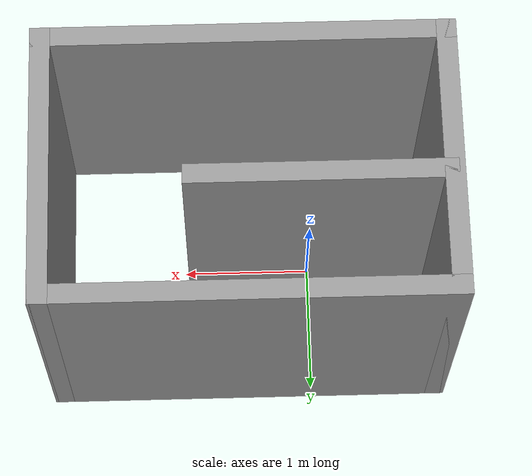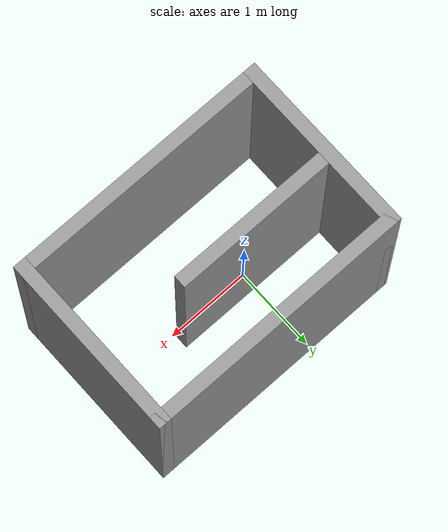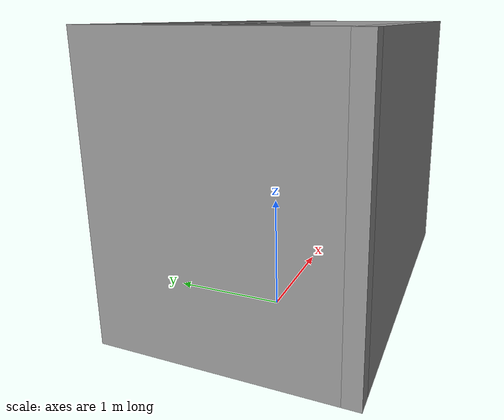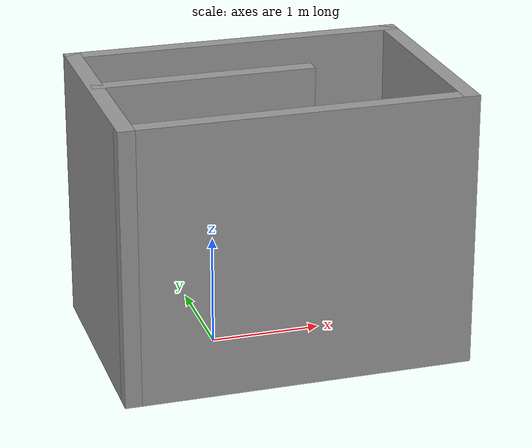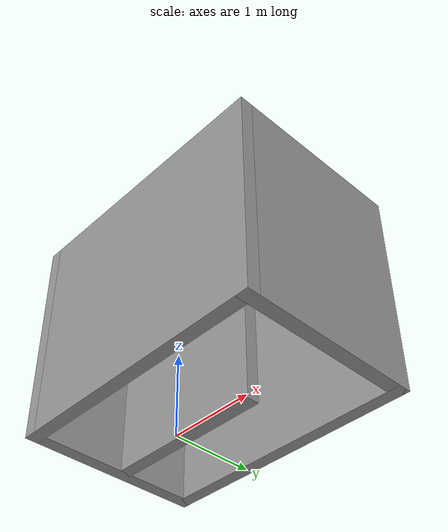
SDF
<?xml version='1.0'?>
<sdf version='1.7'>
  <model name='course1'>
    <pose>0.5 0 0 0 -0 0</pose>
    <link name='Wall_0'>
      <collision name='Wall_0_Collision'>
        <geometry>
          <box>
            <size>2.15 0.15 2.5</size>
          </box>
        </geometry>
        <pose>0 0 1.25 0 -0 0</pose>
      </collision>
      <visual name='Wall_0_Visual'>
        <pose>0 0 1.25 0 -0 0</pose>
        <geometry>
          <box>
            <size>2.15 0.15 2.5</size>
          </box>
        </geometry>
        <material>
          <script>
            <uri>file://media/materials/scripts/gazebo.material</uri>
            <name>Gazebo/Grey</name>
          </script>
          <ambient>1 1 1 1</ambient>
        </material>
        <meta>
          <layer>0</layer>
        </meta>
      </visual>
      <pose>-1.5 0 0 0 -0 1.5708</pose>
    </link>
    <link name='Wall_1'>
      <collision name='Wall_1_Collision'>
        <geometry>
          <box>
            <size>3.15 0.15 2.5</size>
          </box>
        </geometry>
        <pose>0 0 1.25 0 -0 0</pose>
      </collision>
      <visual name='Wall_1_Visual'>
        <pose>0 0 1.25 0 -0 0</pose>
        <geometry>
          <box>
            <size>3.15 0.15 2.5</size>
          </box>
        </geometry>
        <material>
          <script>
            <uri>file://media/materials/scripts/gazebo.material</uri>
            <name>Gazebo/Grey</name>
          </script>
          <ambient>1 1 1 1</ambient>
        </material>
        <meta>
          <layer>0</layer>
        </meta>
      </visual>
      <pose>0 1 0 0 -0 0</pose>
    </link>
    <link name='Wall_10'>
      <collision name='Wall_10_Collision'>
        <geometry>
          <box>
            <size>2 0.15 2.5</size>
          </box>
        </geometry>
        <pose>0 0 1.25 0 -0 0</pose>
      </collision>
      <visual name='Wall_10_Visual'>
        <pose>0 0 1.25 0 -0 0</pose>
        <geometry>
          <box>
            <size>2 0.15 2.5</size>
          </box>
        </geometry>
        <material>
          <script>
            <uri>file://media/materials/scripts/gazebo.material</uri>
            <name>Gazebo/Grey</name>
          </script>
          <ambient>1 1 1 1</ambient>
        </material>
        <meta>
          <layer>0</layer>
        </meta>
      </visual>
      <pose>-0.531907 0.111636 0 0 -0 0</pose>
    </link>
    <link name='Wall_2'>
      <collision name='Wall_2_Collision'>
        <geometry>
          <box>
            <size>2.15 0.15 2.5</size>
          </box>
        </geometry>
        <pose>0 0 1.25 0 -0 0</pose>
      </collision>
      <visual name='Wall_2_Visual'>
        <pose>0 0 1.25 0 -0 0</pose>
        <geometry>
          <box>
            <size>2.15 0.15 2.5</size>
          </box>
        </geometry>
        <material>
          <script>
            <uri>file://media/materials/scripts/gazebo.material</uri>
            <name>Gazebo/Grey</name>
          </script>
          <ambient>1 1 1 1</ambient>
        </material>
        <meta>
          <layer>0</layer>
        </meta>
      </visual>
      <pose>1.5 0 0 0 -0 -1.5708</pose>
    </link>
    <link name='Wall_3'>
      <collision name='Wall_3_Collision'>
        <geometry>
          <box>
            <size>3.15 0.15 2.5</size>
          </box>
        </geometry>
        <pose>0 0 1.25 0 -0 0</pose>
      </collision>
      <visual name='Wall_3_Visual'>
        <pose>0 0 1.25 0 -0 0</pose>
        <geometry>
          <box>
            <size>3.15 0.15 2.5</size>
          </box>
        </geometry>
        <material>
          <script>
            <uri>file://media/materials/scripts/gazebo.material</uri>
            <name>Gazebo/Grey</name>
          </script>
          <ambient>1 1 1 1</ambient>
        </material>
        <meta>
          <layer>0</layer>
        </meta>
      </visual>
      <pose>0 -1 0 0 -0 3.14159</pose>
    </link>
    <static>1</static>
  </model>
</sdf>
